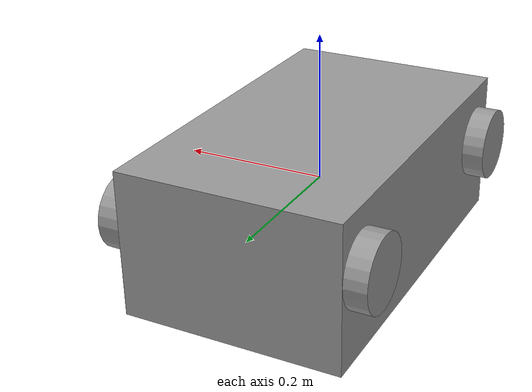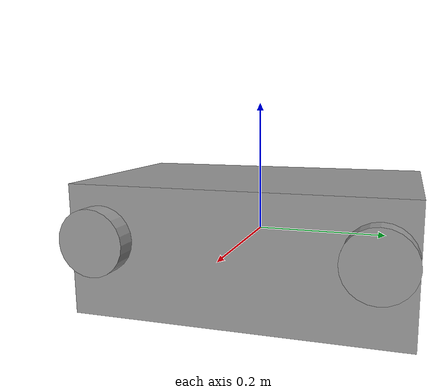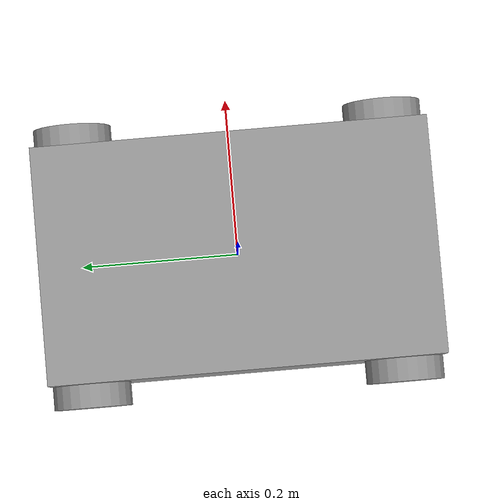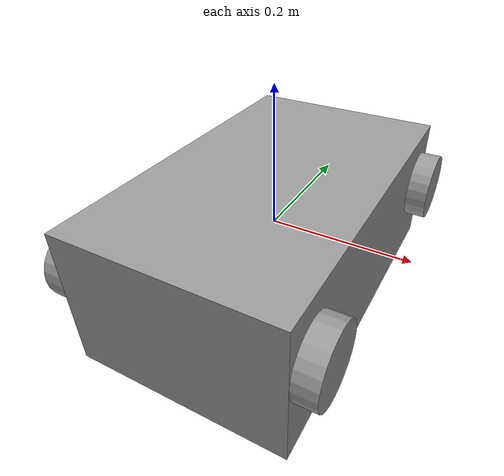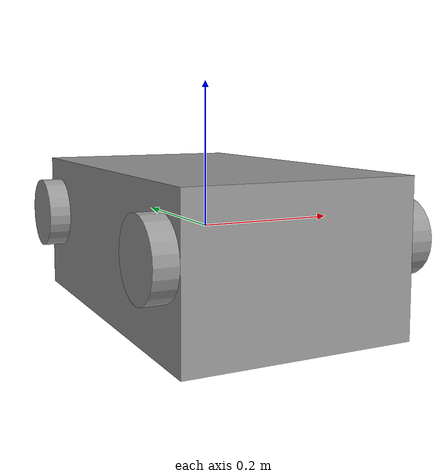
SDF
<?xml version='1.0'?>
<sdf version='1.6'>
  <model name='bot1'>
    <link name='link_0'>
      <pose frame=''>0 0 -0.016 0 -0 0</pose>
      <inertial>
        <mass>0.488879</mass>
        <inertia>
          <ixx>0.0504768</ixx>
          <ixy>0</ixy>
          <ixz>0</ixz>
          <iyy>0.0504768</iyy>
          <iyz>0</iyz>
          <izz>0.0814798</izz>
        </inertia>
        <pose frame=''>0 0 0 0 -0 0</pose>
      </inertial>
      <gravity>1</gravity>
      <self_collide>0</self_collide>
      <kinematic>0</kinematic>
      <visual name='visual'>
        <pose frame=''>0 0 0 0 -0 0</pose>
        <geometry>
          <box>
            <size>0.3 0.5 0.2</size>
          </box>
        </geometry>
        <material>
          <lighting>1</lighting>
          <script>
            <uri>file://media/materials/scripts/gazebo.material</uri>
            <name>Gazebo/Grey</name>
          </script>
          <shader type='pixel'>
            <normal_map>__default__</normal_map>
          </shader>
          <ambient>0.3 0.3 0.3 1</ambient>
          <diffuse>0.7 0.7 0.7 1</diffuse>
          <specular>0.01 0.01 0.01 1</specular>
          <emissive>0 0 0 1</emissive>
        </material>
        <transparency>0</transparency>
        <cast_shadows>1</cast_shadows>
      </visual>
      <collision name='collision'>
        <laser_retro>0</laser_retro>
        <max_contacts>10</max_contacts>
        <pose frame=''>0 0 0 0 -0 0</pose>
        <geometry>
          <box>
            <size>0.3 0.5 0.2</size>
          </box>
        </geometry>
        <surface>
          <friction>
            <ode>
              <mu>1</mu>
              <mu2>1</mu2>
              <fdir1>0 0 0</fdir1>
              <slip1>0</slip1>
              <slip2>0</slip2>
            </ode>
            <torsional>
              <coefficient>1</coefficient>
              <patch_radius>0</patch_radius>
              <surface_radius>0</surface_radius>
              <use_patch_radius>1</use_patch_radius>
              <ode>
                <slip>0</slip>
              </ode>
            </torsional>
          </friction>
          <bounce>
            <restitution_coefficient>0</restitution_coefficient>
            <threshold>1e+06</threshold>
          </bounce>
          <contact>
            <collide_without_contact>0</collide_without_contact>
            <collide_without_contact_bitmask>1</collide_without_contact_bitmask>
            <collide_bitmask>1</collide_bitmask>
            <ode>
              <soft_cfm>0</soft_cfm>
              <soft_erp>0.2</soft_erp>
              <kp>1e+13</kp>
              <kd>1</kd>
              <max_vel>0.01</max_vel>
              <min_depth>0</min_depth>
            </ode>
            <bullet>
              <split_impulse>1</split_impulse>
              <split_impulse_penetration_threshold>-0.01</split_impulse_penetration_threshold>
              <soft_cfm>0</soft_cfm>
              <soft_erp>0.2</soft_erp>
              <kp>1e+13</kp>
              <kd>1</kd>
            </bullet>
          </contact>
        </surface>
      </collision>
    </link>
    <link name='link_1_clone'>
      <pose frame=''>0.165005 0.2 0.004 0 1.5707 0</pose>
      <inertial>
        <mass>0.0014441</mass>
        <inertia>
          <ixx>2.41e-06</ixx>
          <ixy>0</ixy>
          <ixz>0</ixz>
          <iyy>2.41e-06</iyy>
          <iyz>0</iyz>
          <izz>3.05e-06</izz>
        </inertia>
        <pose frame=''>0 0 0 0 -0 0</pose>
      </inertial>
      <self_collide>0</self_collide>
      <kinematic>0</kinematic>
      <gravity>1</gravity>
      <visual name='visual'>
        <pose frame=''>0 0 0 0 -0 0</pose>
        <geometry>
          <cylinder>
            <radius>0.05</radius>
            <length>0.03</length>
          </cylinder>
        </geometry>
        <material>
          <lighting>1</lighting>
          <script>
            <uri>file://media/materials/scripts/gazebo.material</uri>
            <name>Gazebo/Grey</name>
          </script>
          <shader type='pixel'>
            <normal_map>__default__</normal_map>
          </shader>
          <ambient>0.3 0.3 0.3 1</ambient>
          <diffuse>0.7 0.7 0.7 1</diffuse>
          <specular>0.01 0.01 0.01 1</specular>
          <emissive>0 0 0 1</emissive>
        </material>
        <transparency>0</transparency>
        <cast_shadows>1</cast_shadows>
      </visual>
      <collision name='collision'>
        <laser_retro>0</laser_retro>
        <max_contacts>10</max_contacts>
        <pose frame=''>0 0 0 0 -0 0</pose>
        <geometry>
          <cylinder>
            <radius>0.05</radius>
            <length>0.03</length>
          </cylinder>
        </geometry>
        <surface>
          <friction>
            <ode>
              <mu>1</mu>
              <mu2>1</mu2>
              <fdir1>0 0 0</fdir1>
              <slip1>0</slip1>
              <slip2>0</slip2>
            </ode>
            <torsional>
              <coefficient>1</coefficient>
              <patch_radius>0</patch_radius>
              <surface_radius>0</surface_radius>
              <use_patch_radius>1</use_patch_radius>
              <ode>
                <slip>0</slip>
              </ode>
            </torsional>
          </friction>
          <bounce>
            <restitution_coefficient>0</restitution_coefficient>
            <threshold>1e+06</threshold>
          </bounce>
          <contact>
            <collide_without_contact>0</collide_without_contact>
            <collide_without_contact_bitmask>1</collide_without_contact_bitmask>
            <collide_bitmask>1</collide_bitmask>
            <ode>
              <soft_cfm>0</soft_cfm>
              <soft_erp>0.2</soft_erp>
              <kp>1e+13</kp>
              <kd>1</kd>
              <max_vel>0.01</max_vel>
              <min_depth>0</min_depth>
            </ode>
            <bullet>
              <split_impulse>1</split_impulse>
              <split_impulse_penetration_threshold>-0.01</split_impulse_penetration_threshold>
              <soft_cfm>0</soft_cfm>
              <soft_erp>0.2</soft_erp>
              <kp>1e+13</kp>
              <kd>1</kd>
            </bullet>
          </contact>
        </surface>
      </collision>
    </link>
    <link name='link_1_clone_0'>
      <pose frame=''>-0.165005 0.2 0.004 0 1.5707 0</pose>
      <inertial>
        <mass>0.0014441</mass>
        <inertia>
          <ixx>2.41e-06</ixx>
          <ixy>0</ixy>
          <ixz>0</ixz>
          <iyy>2.41e-06</iyy>
          <iyz>0</iyz>
          <izz>3.05e-06</izz>
        </inertia>
        <pose frame=''>0 0 0 0 -0 0</pose>
      </inertial>
      <self_collide>0</self_collide>
      <kinematic>0</kinematic>
      <visual name='visual'>
        <pose frame=''>0 0 0 0 -0 0</pose>
        <geometry>
          <cylinder>
            <radius>0.05</radius>
            <length>0.03</length>
          </cylinder>
        </geometry>
        <material>
          <lighting>1</lighting>
          <script>
            <uri>file://media/materials/scripts/gazebo.material</uri>
            <name>Gazebo/Grey</name>
          </script>
          <shader type='pixel'>
            <normal_map>__default__</normal_map>
          </shader>
          <ambient>0.3 0.3 0.3 1</ambient>
          <diffuse>0.7 0.7 0.7 1</diffuse>
          <specular>0.01 0.01 0.01 1</specular>
          <emissive>0 0 0 1</emissive>
        </material>
        <transparency>0</transparency>
        <cast_shadows>1</cast_shadows>
      </visual>
      <collision name='collision'>
        <laser_retro>0</laser_retro>
        <max_contacts>10</max_contacts>
        <pose frame=''>0 0 0 0 -0 0</pose>
        <geometry>
          <cylinder>
            <radius>0.05</radius>
            <length>0.03</length>
          </cylinder>
        </geometry>
        <surface>
          <friction>
            <ode>
              <mu>1</mu>
              <mu2>1</mu2>
              <fdir1>0 0 0</fdir1>
              <slip1>0</slip1>
              <slip2>0</slip2>
            </ode>
            <torsional>
              <coefficient>1</coefficient>
              <patch_radius>0</patch_radius>
              <surface_radius>0</surface_radius>
              <use_patch_radius>1</use_patch_radius>
              <ode>
                <slip>0</slip>
              </ode>
            </torsional>
          </friction>
          <bounce>
            <restitution_coefficient>0</restitution_coefficient>
            <threshold>1e+06</threshold>
          </bounce>
          <contact>
            <collide_without_contact>0</collide_without_contact>
            <collide_without_contact_bitmask>1</collide_without_contact_bitmask>
            <collide_bitmask>1</collide_bitmask>
            <ode>
              <soft_cfm>0</soft_cfm>
              <soft_erp>0.2</soft_erp>
              <kp>1e+13</kp>
              <kd>1</kd>
              <max_vel>0.01</max_vel>
              <min_depth>0</min_depth>
            </ode>
            <bullet>
              <split_impulse>1</split_impulse>
              <split_impulse_penetration_threshold>-0.01</split_impulse_penetration_threshold>
              <soft_cfm>0</soft_cfm>
              <soft_erp>0.2</soft_erp>
              <kp>1e+13</kp>
              <kd>1</kd>
            </bullet>
          </contact>
        </surface>
      </collision>
    </link>
    <link name='link_1_clone_1'>
      <pose frame=''>-0.165005 -0.2 0.004 0 1.5707 0</pose>
      <inertial>
        <mass>0.0014441</mass>
        <inertia>
          <ixx>2.41e-06</ixx>
          <ixy>0</ixy>
          <ixz>0</ixz>
          <iyy>2.41e-06</iyy>
          <iyz>0</iyz>
          <izz>3.05e-06</izz>
        </inertia>
        <pose frame=''>0 0 0 0 -0 0</pose>
      </inertial>
      <self_collide>0</self_collide>
      <kinematic>0</kinematic>
      <visual name='visual'>
        <pose frame=''>0 0 0 0 -0 0</pose>
        <geometry>
          <cylinder>
            <radius>0.05</radius>
            <length>0.03</length>
          </cylinder>
        </geometry>
        <material>
          <lighting>1</lighting>
          <script>
            <uri>file://media/materials/scripts/gazebo.material</uri>
            <name>Gazebo/Grey</name>
          </script>
          <shader type='pixel'>
            <normal_map>__default__</normal_map>
          </shader>
          <ambient>0.3 0.3 0.3 1</ambient>
          <diffuse>0.7 0.7 0.7 1</diffuse>
          <specular>0.01 0.01 0.01 1</specular>
          <emissive>0 0 0 1</emissive>
        </material>
        <transparency>0</transparency>
        <cast_shadows>1</cast_shadows>
      </visual>
      <collision name='collision'>
        <laser_retro>0</laser_retro>
        <max_contacts>10</max_contacts>
        <pose frame=''>0 0 0 0 -0 0</pose>
        <geometry>
          <cylinder>
            <radius>0.05</radius>
            <length>0.03</length>
          </cylinder>
        </geometry>
        <surface>
          <friction>
            <ode>
              <mu>1</mu>
              <mu2>1</mu2>
              <fdir1>0 0 0</fdir1>
              <slip1>0</slip1>
              <slip2>0</slip2>
            </ode>
            <torsional>
              <coefficient>1</coefficient>
              <patch_radius>0</patch_radius>
              <surface_radius>0</surface_radius>
              <use_patch_radius>1</use_patch_radius>
              <ode>
                <slip>0</slip>
              </ode>
            </torsional>
          </friction>
          <bounce>
            <restitution_coefficient>0</restitution_coefficient>
            <threshold>1e+06</threshold>
          </bounce>
          <contact>
            <collide_without_contact>0</collide_without_contact>
            <collide_without_contact_bitmask>1</collide_without_contact_bitmask>
            <collide_bitmask>1</collide_bitmask>
            <ode>
              <soft_cfm>0</soft_cfm>
              <soft_erp>0.2</soft_erp>
              <kp>1e+13</kp>
              <kd>1</kd>
              <max_vel>0.01</max_vel>
              <min_depth>0</min_depth>
            </ode>
            <bullet>
              <split_impulse>1</split_impulse>
              <split_impulse_penetration_threshold>-0.01</split_impulse_penetration_threshold>
              <soft_cfm>0</soft_cfm>
              <soft_erp>0.2</soft_erp>
              <kp>1e+13</kp>
              <kd>1</kd>
            </bullet>
          </contact>
        </surface>
      </collision>
    </link>
    <link name='link_1_clone_clone'>
      <pose frame=''>0.165005 -0.2 0.004 0 1.5707 0</pose>
      <inertial>
        <mass>0.0014441</mass>
        <inertia>
          <ixx>2.41e-06</ixx>
          <ixy>0</ixy>
          <ixz>0</ixz>
          <iyy>2.41e-06</iyy>
          <iyz>0</iyz>
          <izz>3.05e-06</izz>
        </inertia>
        <pose frame=''>0 0 0 0 -0 0</pose>
      </inertial>
      <self_collide>0</self_collide>
      <kinematic>0</kinematic>
      <visual name='visual'>
        <pose frame=''>0 0 0 0 -0 0</pose>
        <geometry>
          <cylinder>
            <radius>0.05</radius>
            <length>0.03</length>
          </cylinder>
        </geometry>
        <material>
          <lighting>1</lighting>
          <script>
            <uri>file://media/materials/scripts/gazebo.material</uri>
            <name>Gazebo/Grey</name>
          </script>
          <shader type='pixel'>
            <normal_map>__default__</normal_map>
          </shader>
          <ambient>0.3 0.3 0.3 1</ambient>
          <diffuse>0.7 0.7 0.7 1</diffuse>
          <specular>0.01 0.01 0.01 1</specular>
          <emissive>0 0 0 1</emissive>
        </material>
        <transparency>0</transparency>
        <cast_shadows>1</cast_shadows>
      </visual>
      <collision name='collision'>
        <laser_retro>0</laser_retro>
        <max_contacts>10</max_contacts>
        <pose frame=''>0 0 0 0 -0 0</pose>
        <geometry>
          <cylinder>
            <radius>0.05</radius>
            <length>0.03</length>
          </cylinder>
        </geometry>
        <surface>
          <friction>
            <ode>
              <mu>1</mu>
              <mu2>1</mu2>
              <fdir1>0 0 0</fdir1>
              <slip1>0</slip1>
              <slip2>0</slip2>
            </ode>
            <torsional>
              <coefficient>1</coefficient>
              <patch_radius>0</patch_radius>
              <surface_radius>0</surface_radius>
              <use_patch_radius>1</use_patch_radius>
              <ode>
                <slip>0</slip>
              </ode>
            </torsional>
          </friction>
          <bounce>
            <restitution_coefficient>0</restitution_coefficient>
            <threshold>1e+06</threshold>
          </bounce>
          <contact>
            <collide_without_contact>0</collide_without_contact>
            <collide_without_contact_bitmask>1</collide_without_contact_bitmask>
            <collide_bitmask>1</collide_bitmask>
            <ode>
              <soft_cfm>0</soft_cfm>
              <soft_erp>0.2</soft_erp>
              <kp>1e+13</kp>
              <kd>1</kd>
              <max_vel>0.01</max_vel>
              <min_depth>0</min_depth>
            </ode>
            <bullet>
              <split_impulse>1</split_impulse>
              <split_impulse_penetration_threshold>-0.01</split_impulse_penetration_threshold>
              <soft_cfm>0</soft_cfm>
              <soft_erp>0.2</soft_erp>
              <kp>1e+13</kp>
              <kd>1</kd>
            </bullet>
          </contact>
        </surface>
      </collision>
    </link>
    <joint name='link_0_JOINT_3' type='revolute'>
      <parent>link_0</parent>
      <child>link_1_clone</child>
      <pose frame=''>0 0 0 0 -0 0</pose>
      <axis>
        <xyz>0 0 1</xyz>
        <use_parent_model_frame>0</use_parent_model_frame>
        <limit>
          <lower>-1.79769e+308</lower>
          <upper>1.79769e+308</upper>
          <effort>-1</effort>
          <velocity>-1</velocity>
        </limit>
        <dynamics>
          <spring_reference>0</spring_reference>
          <spring_stiffness>0</spring_stiffness>
          <damping>0</damping>
          <friction>0</friction>
        </dynamics>
      </axis>
      <physics>
        <ode>
          <limit>
            <cfm>0</cfm>
            <erp>0.2</erp>
          </limit>
          <suspension>
            <cfm>0</cfm>
            <erp>0.2</erp>
          </suspension>
        </ode>
      </physics>
    </joint>
    <joint name='link_0_JOINT_4' type='revolute'>
      <parent>link_0</parent>
      <child>link_1_clone_clone</child>
      <pose frame=''>0 0 0 0 -0 0</pose>
      <axis>
        <xyz>0 0 1</xyz>
        <use_parent_model_frame>0</use_parent_model_frame>
        <limit>
          <lower>-1.79769e+308</lower>
          <upper>1.79769e+308</upper>
          <effort>-1</effort>
          <velocity>-1</velocity>
        </limit>
        <dynamics>
          <spring_reference>0</spring_reference>
          <spring_stiffness>0</spring_stiffness>
          <damping>0</damping>
          <friction>0</friction>
        </dynamics>
      </axis>
      <physics>
        <ode>
          <limit>
            <cfm>0</cfm>
            <erp>0.2</erp>
          </limit>
          <suspension>
            <cfm>0</cfm>
            <erp>0.2</erp>
          </suspension>
        </ode>
      </physics>
    </joint>
    <joint name='link_0_JOINT_5' type='revolute'>
      <parent>link_0</parent>
      <child>link_1_clone_1</child>
      <pose frame=''>0 0 0 0 -0 0</pose>
      <axis>
        <xyz>0 0 -1</xyz>
        <use_parent_model_frame>0</use_parent_model_frame>
        <limit>
          <lower>-1.79769e+308</lower>
          <upper>1.79769e+308</upper>
          <effort>-1</effort>
          <velocity>-1</velocity>
        </limit>
        <dynamics>
          <spring_reference>0</spring_reference>
          <spring_stiffness>0</spring_stiffness>
          <damping>0</damping>
          <friction>0</friction>
        </dynamics>
      </axis>
      <physics>
        <ode>
          <limit>
            <cfm>0</cfm>
            <erp>0.2</erp>
          </limit>
          <suspension>
            <cfm>0</cfm>
            <erp>0.2</erp>
          </suspension>
        </ode>
      </physics>
    </joint>
    <joint name='link_0_JOINT_6' type='revolute'>
      <parent>link_0</parent>
      <child>link_1_clone_0</child>
      <pose frame=''>0 0 0 0 -0 0</pose>
      <axis>
        <xyz>0 0 -1</xyz>
        <use_parent_model_frame>0</use_parent_model_frame>
        <limit>
          <lower>-1.79769e+308</lower>
          <upper>1.79769e+308</upper>
          <effort>-1</effort>
          <velocity>-1</velocity>
        </limit>
        <dynamics>
          <spring_reference>0</spring_reference>
          <spring_stiffness>0</spring_stiffness>
          <damping>0</damping>
          <friction>0</friction>
        </dynamics>
      </axis>
      <physics>
        <ode>
          <limit>
            <cfm>0</cfm>
            <erp>0.2</erp>
          </limit>
          <suspension>
            <cfm>0</cfm>
            <erp>0.2</erp>
          </suspension>
        </ode>
      </physics>
    </joint>
    <static>0</static>
    <allow_auto_disable>1</allow_auto_disable>
  </model>
</sdf>
